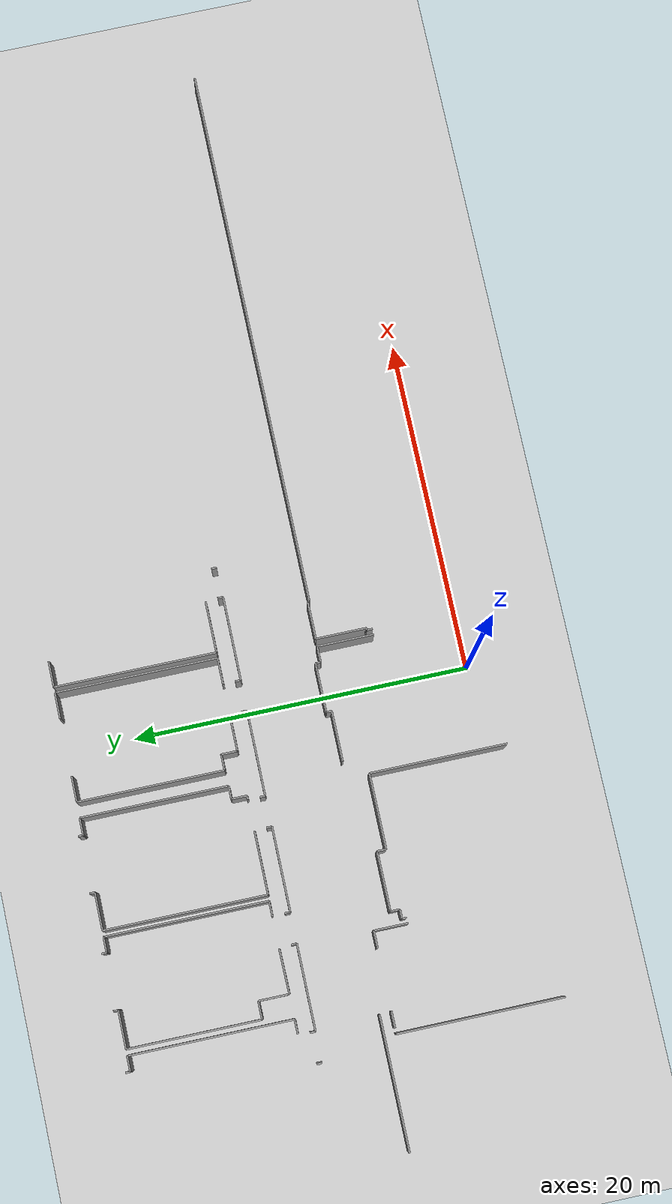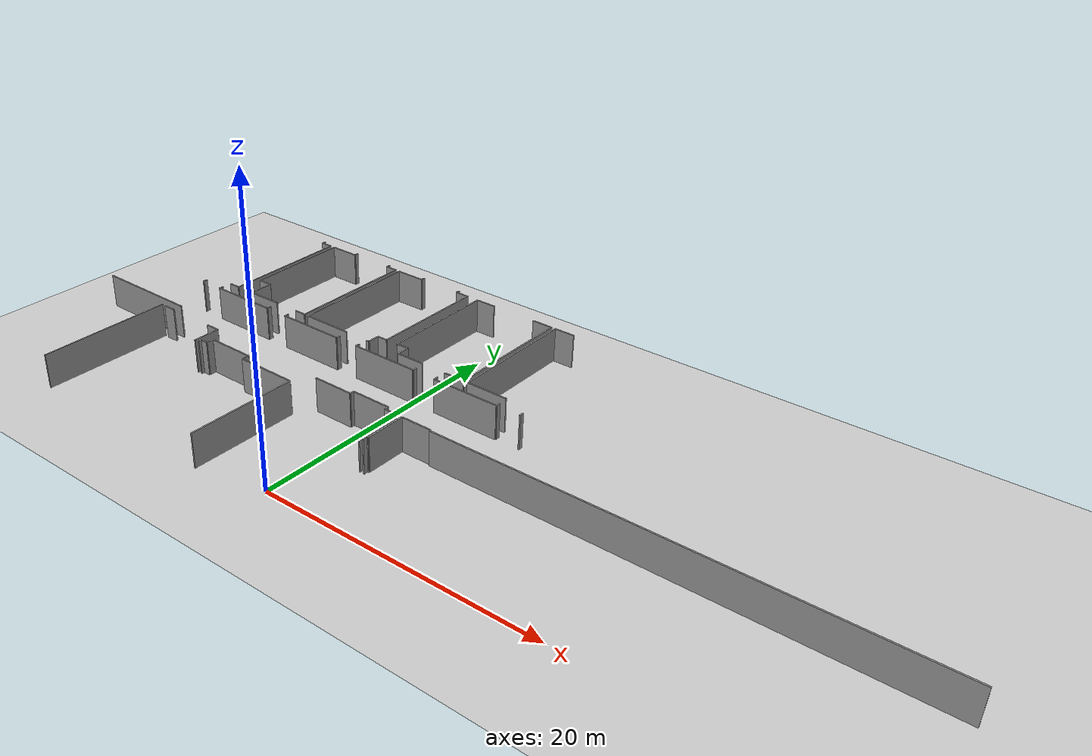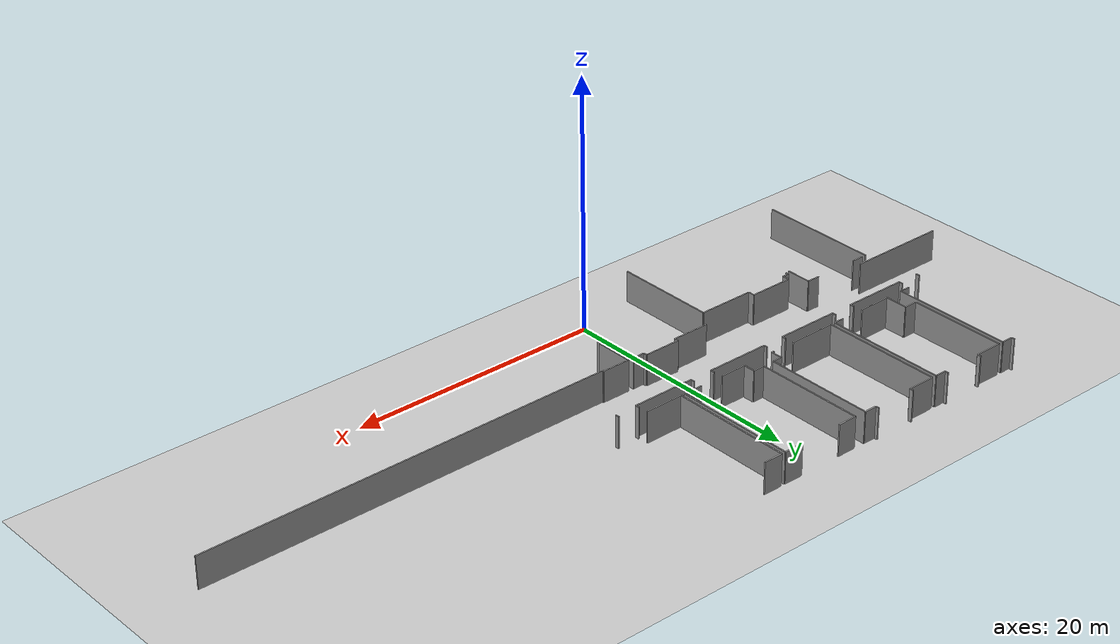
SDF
<sdf version="1.6">
 <world name="default">
  <model name="ground_plane">
   <static>1</static>
   <link name="link">
    <collision name="collision">
     <geometry><plane><normal>0 0 1</normal><size>100 100</size></plane></geometry>
     <surface><friction><ode><mu>100</mu><mu2>50</mu2></ode></friction></surface>
    </collision>
    <visual name="visual">
     <cast_shadows>0</cast_shadows>
     <geometry><plane><normal>0 0 1</normal><size>100 100</size></plane></geometry>
     <material>
      <script><uri>file://media/materials/scripts/gazebo.material</uri><name>Gazebo/Grey</name></script>
     </material>
    </visual>
   </link>
  </model>
  <model name="0510032196_A_40_1_104">
   <static>1</static>
   <link name="Wall_47">
    <collision name="Wall_47_Collision">
     <geometry><box><size>0.295231559148 0.1 2.5</size></box></geometry>
     <pose>0.147615779574 0 1.25 0 0 0</pose>
    </collision>
    <visual name="Wall_47_Visual">
     <pose>0.147615779574 0 1.25 0 0 0</pose>
     <geometry><box><size>0.295231559148 0.1 2.5</size></box></geometry>
     <material>
      <script><uri>file://media/materials/scripts/gazebo.material</uri><name>Gazebo/Grey</name></script>
      <ambient>1 1 1 1</ambient>
     </material>
    </visual>
    <pose>46.7275430837 -0.0 0 0 0 -1.57079632679</pose>
   </link>
   <link name="Wall_48">
    <collision name="Wall_48_Collision">
     <geometry><box><size>0.905266636165 0.1 2.5</size></box></geometry>
     <pose>0.452633318082 0 1.25 0 0 0</pose>
    </collision>
    <visual name="Wall_48_Visual">
     <pose>0.452633318082 0 1.25 0 0 0</pose>
     <geometry><box><size>0.905266636165 0.1 2.5</size></box></geometry>
     <material>
      <script><uri>file://media/materials/scripts/gazebo.material</uri><name>Gazebo/Grey</name></script>
      <ambient>1 1 1 1</ambient>
     </material>
    </visual>
    <pose>46.7275430837 -0.295231559148 0 0 0 0.0</pose>
   </link>
   <link name="Wall_49">
    <collision name="Wall_49_Collision">
     <geometry><box><size>9.684179757 0.1 2.5</size></box></geometry>
     <pose>4.8420898785 0 1.25 0 0 0</pose>
    </collision>
    <visual name="Wall_49_Visual">
     <pose>4.8420898785 0 1.25 0 0 0</pose>
     <geometry><box><size>9.684179757 0.1 2.5</size></box></geometry>
     <material>
      <script><uri>file://media/materials/scripts/gazebo.material</uri><name>Gazebo/Grey</name></script>
      <ambient>1 1 1 1</ambient>
     </material>
    </visual>
    <pose>47.6328097199 -0.295231559148 0 0 0 -1.57079632679</pose>
   </link>
   <link name="Wall_50">
    <collision name="Wall_50_Collision">
     <geometry><box><size>0.850998932439 0.1 2.5</size></box></geometry>
     <pose>0.425499466219 0 1.25 0 0 0</pose>
    </collision>
    <visual name="Wall_50_Visual">
     <pose>0.425499466219 0 1.25 0 0 0</pose>
     <geometry><box><size>0.850998932439 0.1 2.5</size></box></geometry>
     <material>
      <script><uri>file://media/materials/scripts/gazebo.material</uri><name>Gazebo/Grey</name></script>
      <ambient>1 1 1 1</ambient>
     </material>
    </visual>
    <pose>47.6328097199 -9.97941131615 0 0 0 3.14159265359</pose>
   </link>
   <link name="Wall_53">
    <collision name="Wall_53_Collision">
     <geometry><box><size>1.80544964669 0.1 2.5</size></box></geometry>
     <pose>0.902724823344 0 1.25 0 0 0</pose>
    </collision>
    <visual name="Wall_53_Visual">
     <pose>0.902724823344 0 1.25 0 0 0</pose>
     <geometry><box><size>1.80544964669 0.1 2.5</size></box></geometry>
     <material>
      <script><uri>file://media/materials/scripts/gazebo.material</uri><name>Gazebo/Grey</name></script>
      <ambient>1 1 1 1</ambient>
     </material>
    </visual>
    <pose>49.072365411 -9.98030095064 0 0 0 1.57079632679</pose>
   </link>
   <link name="Wall_54">
    <collision name="Wall_54_Collision">
     <geometry><box><size>1.06845101927 0.1 2.5</size></box></geometry>
     <pose>0.534225509633 0 1.25 0 0 0</pose>
    </collision>
    <visual name="Wall_54_Visual">
     <pose>0.534225509633 0 1.25 0 0 0</pose>
     <geometry><box><size>1.06845101927 0.1 2.5</size></box></geometry>
     <material>
      <script><uri>file://media/materials/scripts/gazebo.material</uri><name>Gazebo/Grey</name></script>
      <ambient>1 1 1 1</ambient>
     </material>
    </visual>
    <pose>49.072365411 -8.17485130395 0 0 0 3.14159265359</pose>
   </link>
   <link name="Wall_55">
    <collision name="Wall_55_Collision">
     <geometry><box><size>7.86957958416 0.1 2.5</size></box></geometry>
     <pose>3.93478979208 0 1.25 0 0 0</pose>
    </collision>
    <visual name="Wall_55_Visual">
     <pose>3.93478979208 0 1.25 0 0 0</pose>
     <geometry><box><size>7.86957958416 0.1 2.5</size></box></geometry>
     <material>
      <script><uri>file://media/materials/scripts/gazebo.material</uri><name>Gazebo/Grey</name></script>
      <ambient>1 1 1 1</ambient>
     </material>
    </visual>
    <pose>48.0039143917 -8.17485130395 0 0 0 1.57079632679</pose>
   </link>
   <link name="Wall_56">
    <collision name="Wall_56_Collision">
     <geometry><box><size>2.23806618881 0.1 2.5</size></box></geometry>
     <pose>1.1190330944 0 1.25 0 0 0</pose>
    </collision>
    <visual name="Wall_56_Visual">
     <pose>1.1190330944 0 1.25 0 0 0</pose>
     <geometry><box><size>2.23806618881 0.1 2.5</size></box></geometry>
     <material>
      <script><uri>file://media/materials/scripts/gazebo.material</uri><name>Gazebo/Grey</name></script>
      <ambient>1 1 1 1</ambient>
     </material>
    </visual>
    <pose>48.0039143917 -0.305271719791 0 0 0 0.0</pose>
   </link>
   <link name="Wall_57">
    <collision name="Wall_57_Collision">
     <geometry><box><size>0.29065629607 0.1 2.5</size></box></geometry>
     <pose>0.145328148035 0 1.25 0 0 0</pose>
    </collision>
    <visual name="Wall_57_Visual">
     <pose>0.145328148035 0 1.25 0 0 0</pose>
     <geometry><box><size>0.29065629607 0.1 2.5</size></box></geometry>
     <material>
      <script><uri>file://media/materials/scripts/gazebo.material</uri><name>Gazebo/Grey</name></script>
      <ambient>1 1 1 1</ambient>
     </material>
    </visual>
    <pose>50.2419805806 -0.305271719791 0 0 0 1.57079632679</pose>
   </link>
   <link name="Wall_58">
    <collision name="Wall_58_Collision">
     <geometry><box><size>0.28328503889 0.1 2.5</size></box></geometry>
     <pose>0.141642519445 0 1.25 0 0 0</pose>
    </collision>
    <visual name="Wall_58_Visual">
     <pose>0.141642519445 0 1.25 0 0 0</pose>
     <geometry><box><size>0.28328503889 0.1 2.5</size></box></geometry>
     <material>
      <script><uri>file://media/materials/scripts/gazebo.material</uri><name>Gazebo/Grey</name></script>
      <ambient>1 1 1 1</ambient>
     </material>
    </visual>
    <pose>53.5482436073 -0.0146154237202 0 0 0 -1.57079632679</pose>
   </link>
   <link name="Wall_59">
    <collision name="Wall_59_Collision">
     <geometry><box><size>0.909333536678 0.1 2.5</size></box></geometry>
     <pose>0.454666768339 0 1.25 0 0 0</pose>
    </collision>
    <visual name="Wall_59_Visual">
     <pose>0.454666768339 0 1.25 0 0 0</pose>
     <geometry><box><size>0.909333536678 0.1 2.5</size></box></geometry>
     <material>
      <script><uri>file://media/materials/scripts/gazebo.material</uri><name>Gazebo/Grey</name></script>
      <ambient>1 1 1 1</ambient>
     </material>
    </visual>
    <pose>53.5482436073 -0.29790046261 0 0 0 0.0</pose>
   </link>
   <link name="Wall_60">
    <collision name="Wall_60_Collision">
     <geometry><box><size>9.65253418738 0.1 2.5</size></box></geometry>
     <pose>4.82626709369 0 1.25 0 0 0</pose>
    </collision>
    <visual name="Wall_60_Visual">
     <pose>4.82626709369 0 1.25 0 0 0</pose>
     <geometry><box><size>9.65253418738 0.1 2.5</size></box></geometry>
     <material>
      <script><uri>file://media/materials/scripts/gazebo.material</uri><name>Gazebo/Grey</name></script>
      <ambient>1 1 1 1</ambient>
     </material>
    </visual>
    <pose>54.457577144 -0.29790046261 0 0 0 -1.57079632679</pose>
   </link>
   <link name="Wall_61">
    <collision name="Wall_61_Collision">
     <geometry><box><size>0.87908596411 0.1 2.5</size></box></geometry>
     <pose>0.439542982055 0 1.25 0 0 0</pose>
    </collision>
    <visual name="Wall_61_Visual">
     <pose>0.439542982055 0 1.25 0 0 0</pose>
     <geometry><box><size>0.87908596411 0.1 2.5</size></box></geometry>
     <material>
      <script><uri>file://media/materials/scripts/gazebo.material</uri><name>Gazebo/Grey</name></script>
      <ambient>1 1 1 1</ambient>
     </material>
    </visual>
    <pose>54.457577144 -9.95043464999 0 0 0 3.14159265359</pose>
   </link>
   <link name="Wall_62">
    <collision name="Wall_62_Collision">
     <geometry><box><size>2.61582298896 0.1 2.5</size></box></geometry>
     <pose>1.30791149448 0 1.25 0 0 0</pose>
    </collision>
    <visual name="Wall_62_Visual">
     <pose>1.30791149448 0 1.25 0 0 0</pose>
     <geometry><box><size>2.61582298896 0.1 2.5</size></box></geometry>
     <material>
      <script><uri>file://media/materials/scripts/gazebo.material</uri><name>Gazebo/Grey</name></script>
      <ambient>1 1 1 1</ambient>
     </material>
    </visual>
    <pose>51.6880178944 -9.95043464999 0 0 0 -3.13017485135</pose>
   </link>
   <link name="Wall_63">
    <collision name="Wall_63_Collision">
     <geometry><box><size>9.64834019623 0.1 2.5</size></box></geometry>
     <pose>4.82417009811 0 1.25 0 0 0</pose>
    </collision>
    <visual name="Wall_63_Visual">
     <pose>4.82417009811 0 1.25 0 0 0</pose>
     <geometry><box><size>9.64834019623 0.1 2.5</size></box></geometry>
     <material>
      <script><uri>file://media/materials/scripts/gazebo.material</uri><name>Gazebo/Grey</name></script>
      <ambient>1 1 1 1</ambient>
     </material>
    </visual>
    <pose>54.814828936 -9.96644807076 0 0 0 1.57079632679</pose>
   </link>
   <link name="Wall_64">
    <collision name="Wall_64_Collision">
     <geometry><box><size>2.2197651365 0.1 2.5</size></box></geometry>
     <pose>1.10988256825 0 1.25 0 0 0</pose>
    </collision>
    <visual name="Wall_64_Visual">
     <pose>1.10988256825 0 1.25 0 0 0</pose>
     <geometry><box><size>2.2197651365 0.1 2.5</size></box></geometry>
     <material>
      <script><uri>file://media/materials/scripts/gazebo.material</uri><name>Gazebo/Grey</name></script>
      <ambient>1 1 1 1</ambient>
     </material>
    </visual>
    <pose>54.814828936 -0.318107874536 0 0 0 0.0</pose>
   </link>
   <link name="Wall_65">
    <collision name="Wall_65_Collision">
     <geometry><box><size>0.307432260688 0.1 2.5</size></box></geometry>
     <pose>0.153716130344 0 1.25 0 0 0</pose>
    </collision>
    <visual name="Wall_65_Visual">
     <pose>0.153716130344 0 1.25 0 0 0</pose>
     <geometry><box><size>0.307432260688 0.1 2.5</size></box></geometry>
     <material>
      <script><uri>file://media/materials/scripts/gazebo.material</uri><name>Gazebo/Grey</name></script>
      <ambient>1 1 1 1</ambient>
     </material>
    </visual>
    <pose>57.0345940725 -0.318107874536 0 0 0 1.57079632679</pose>
   </link>
   <link name="Wall_66">
    <collision name="Wall_66_Collision">
     <geometry><box><size>0.287224848762 0.1 2.5</size></box></geometry>
     <pose>0.143612424381 0 1.25 0 0 0</pose>
    </collision>
    <visual name="Wall_66_Visual">
     <pose>0.143612424381 0 1.25 0 0 0</pose>
     <geometry><box><size>0.287224848762 0.1 2.5</size></box></geometry>
     <material>
      <script><uri>file://media/materials/scripts/gazebo.material</uri><name>Gazebo/Grey</name></script>
      <ambient>1 1 1 1</ambient>
     </material>
    </visual>
    <pose>60.3714859438 -0.0106756138478 0 0 0 -1.57079632679</pose>
   </link>
   <link name="Wall_67">
    <collision name="Wall_67_Collision">
     <geometry><box><size>1.01723349093 0.1 2.5</size></box></geometry>
     <pose>0.508616745463 0 1.25 0 0 0</pose>
    </collision>
    <visual name="Wall_67_Visual">
     <pose>0.508616745463 0 1.25 0 0 0</pose>
     <geometry><box><size>1.01723349093 0.1 2.5</size></box></geometry>
     <material>
      <script><uri>file://media/materials/scripts/gazebo.material</uri><name>Gazebo/Grey</name></script>
      <ambient>1 1 1 1</ambient>
     </material>
    </visual>
    <pose>60.3714859438 -0.29790046261 0 0 0 0.0</pose>
   </link>
   <link name="Wall_68">
    <collision name="Wall_68_Collision">
     <geometry><box><size>8.74561537288 0.1 2.5</size></box></geometry>
     <pose>4.37280768644 0 1.25 0 0 0</pose>
    </collision>
    <visual name="Wall_68_Visual">
     <pose>4.37280768644 0 1.25 0 0 0</pose>
     <geometry><box><size>8.74561537288 0.1 2.5</size></box></geometry>
     <material>
      <script><uri>file://media/materials/scripts/gazebo.material</uri><name>Gazebo/Grey</name></script>
      <ambient>1 1 1 1</ambient>
     </material>
    </visual>
    <pose>61.3887194347 -0.29790046261 0 0 0 -1.57079632679</pose>
   </link>
   <link name="Wall_69">
    <collision name="Wall_69_Collision">
     <geometry><box><size>0.777159269991 0.1 2.5</size></box></geometry>
     <pose>0.388579634996 0 1.25 0 0 0</pose>
    </collision>
    <visual name="Wall_69_Visual">
     <pose>0.388579634996 0 1.25 0 0 0</pose>
     <geometry><box><size>0.777159269991 0.1 2.5</size></box></geometry>
     <material>
      <script><uri>file://media/materials/scripts/gazebo.material</uri><name>Gazebo/Grey</name></script>
      <ambient>1 1 1 1</ambient>
     </material>
    </visual>
    <pose>61.3887194347 -9.04351583549 0 0 0 3.14159265359</pose>
   </link>
   <link name="Wall_70">
    <collision name="Wall_70_Collision">
     <geometry><box><size>0.91924660668 0.1 2.5</size></box></geometry>
     <pose>0.45962330334 0 1.25 0 0 0</pose>
    </collision>
    <visual name="Wall_70_Visual">
     <pose>0.45962330334 0 1.25 0 0 0</pose>
     <geometry><box><size>0.91924660668 0.1 2.5</size></box></geometry>
     <material>
      <script><uri>file://media/materials/scripts/gazebo.material</uri><name>Gazebo/Grey</name></script>
      <ambient>1 1 1 1</ambient>
     </material>
    </visual>
    <pose>60.6115601647 -9.04351583549 0 0 0 -1.57079632679</pose>
   </link>
   <link name="Wall_71">
    <collision name="Wall_71_Collision">
     <geometry><box><size>0.208809923237 0.1 2.5</size></box></geometry>
     <pose>0.104404961619 0 1.25 0 0 0</pose>
    </collision>
    <visual name="Wall_71_Visual">
     <pose>0.104404961619 0 1.25 0 0 0</pose>
     <geometry><box><size>0.208809923237 0.1 2.5</size></box></geometry>
     <material>
      <script><uri>file://media/materials/scripts/gazebo.material</uri><name>Gazebo/Grey</name></script>
      <ambient>1 1 1 1</ambient>
     </material>
    </visual>
    <pose>60.6115601647 -9.96276244217 0 0 0 3.14159265359</pose>
   </link>
   <link name="Wall_72">
    <collision name="Wall_72_Collision">
     <geometry><box><size>3.73303521883 0.1 2.5</size></box></geometry>
     <pose>1.86651760942 0 1.25 0 0 0</pose>
    </collision>
    <visual name="Wall_72_Visual">
     <pose>1.86651760942 0 1.25 0 0 0</pose>
     <geometry><box><size>3.73303521883 0.1 2.5</size></box></geometry>
     <material>
      <script><uri>file://media/materials/scripts/gazebo.material</uri><name>Gazebo/Grey</name></script>
      <ambient>1 1 1 1</ambient>
     </material>
    </visual>
    <pose>58.5478623354 -9.96276244217 0 0 0 -3.14060535265</pose>
   </link>
   <link name="Wall_73">
    <collision name="Wall_73_Collision">
     <geometry><box><size>0.952671445275 0.1 2.5</size></box></geometry>
     <pose>0.476335722637 0 1.25 0 0 0</pose>
    </collision>
    <visual name="Wall_73_Visual">
     <pose>0.476335722637 0 1.25 0 0 0</pose>
     <geometry><box><size>0.952671445275 0.1 2.5</size></box></geometry>
     <material>
      <script><uri>file://media/materials/scripts/gazebo.material</uri><name>Gazebo/Grey</name></script>
      <ambient>1 1 1 1</ambient>
     </material>
    </visual>
    <pose>63.2522495043 -9.95437445986 0 0 0 1.57079632679</pose>
   </link>
   <link name="Wall_74">
    <collision name="Wall_74_Collision">
     <geometry><box><size>0.935895480657 0.1 2.5</size></box></geometry>
     <pose>0.467947740328 0 1.25 0 0 0</pose>
    </collision>
    <visual name="Wall_74_Visual">
     <pose>0.467947740328 0 1.25 0 0 0</pose>
     <geometry><box><size>0.935895480657 0.1 2.5</size></box></geometry>
     <material>
      <script><uri>file://media/materials/scripts/gazebo.material</uri><name>Gazebo/Grey</name></script>
      <ambient>1 1 1 1</ambient>
     </material>
    </visual>
    <pose>63.2522495043 -9.00170301459 0 0 0 3.14159265359</pose>
   </link>
   <link name="Wall_75">
    <collision name="Wall_75_Collision">
     <geometry><box><size>8.68359514005 0.1 2.5</size></box></geometry>
     <pose>4.34179757003 0 1.25 0 0 0</pose>
    </collision>
    <visual name="Wall_75_Visual">
     <pose>4.34179757003 0 1.25 0 0 0</pose>
     <geometry><box><size>8.68359514005 0.1 2.5</size></box></geometry>
     <material>
      <script><uri>file://media/materials/scripts/gazebo.material</uri><name>Gazebo/Grey</name></script>
      <ambient>1 1 1 1</ambient>
     </material>
    </visual>
    <pose>62.3163540237 -9.00170301459 0 0 0 1.57079632679</pose>
   </link>
   <link name="Wall_76">
    <collision name="Wall_76_Collision">
     <geometry><box><size>1.52203751716 0.1 2.5</size></box></geometry>
     <pose>0.761018758579 0 1.25 0 0 0</pose>
    </collision>
    <visual name="Wall_76_Visual">
     <pose>0.761018758579 0 1.25 0 0 0</pose>
     <geometry><box><size>1.52203751716 0.1 2.5</size></box></geometry>
     <material>
      <script><uri>file://media/materials/scripts/gazebo.material</uri><name>Gazebo/Grey</name></script>
      <ambient>1 1 1 1</ambient>
     </material>
    </visual>
    <pose>62.3163540237 -0.318107874536 0 0 0 0.0</pose>
   </link>
   <link name="Wall_77">
    <collision name="Wall_77_Collision">
     <geometry><box><size>1.54720146408 0.1 2.5</size></box></geometry>
     <pose>0.773600732042 0 1.25 0 0 0</pose>
    </collision>
    <visual name="Wall_77_Visual">
     <pose>0.773600732042 0 1.25 0 0 0</pose>
     <geometry><box><size>1.54720146408 0.1 2.5</size></box></geometry>
     <material>
      <script><uri>file://media/materials/scripts/gazebo.material</uri><name>Gazebo/Grey</name></script>
      <ambient>1 1 1 1</ambient>
     </material>
    </visual>
    <pose>67.2595445071 -0.318107874536 0 0 0 0.0</pose>
   </link>
   <link name="Wall_78">
    <collision name="Wall_78_Collision">
     <geometry><box><size>9.62787860302 0.1 2.5</size></box></geometry>
     <pose>4.81393930151 0 1.25 0 0 0</pose>
    </collision>
    <visual name="Wall_78_Visual">
     <pose>4.81393930151 0 1.25 0 0 0</pose>
     <geometry><box><size>9.62787860302 0.1 2.5</size></box></geometry>
     <material>
      <script><uri>file://media/materials/scripts/gazebo.material</uri><name>Gazebo/Grey</name></script>
      <ambient>1 1 1 1</ambient>
     </material>
    </visual>
    <pose>68.8067459712 -0.318107874536 0 0 0 -1.57079632679</pose>
   </link>
   <link name="Wall_79">
    <collision name="Wall_79_Collision">
     <geometry><box><size>1.56016470947 0.1 2.5</size></box></geometry>
     <pose>0.780082354735 0 1.25 0 0 0</pose>
    </collision>
    <visual name="Wall_79_Visual">
     <pose>0.780082354735 0 1.25 0 0 0</pose>
     <geometry><box><size>1.56016470947 0.1 2.5</size></box></geometry>
     <material>
      <script><uri>file://media/materials/scripts/gazebo.material</uri><name>Gazebo/Grey</name></script>
      <ambient>1 1 1 1</ambient>
     </material>
    </visual>
    <pose>68.8067459712 -9.94598647756 0 0 0 3.14159265359</pose>
   </link>
   <link name="Wall_80">
    <collision name="Wall_80_Collision">
     <geometry><box><size>2.10578153751 0.1 2.5</size></box></geometry>
     <pose>1.05289076876 0 1.25 0 0 0</pose>
    </collision>
    <visual name="Wall_80_Visual">
     <pose>1.05289076876 0 1.25 0 0 0</pose>
     <geometry><box><size>2.10578153751 0.1 2.5</size></box></geometry>
     <material>
      <script><uri>file://media/materials/scripts/gazebo.material</uri><name>Gazebo/Grey</name></script>
      <ambient>1 1 1 1</ambient>
     </material>
    </visual>
    <pose>65.3580143358 -9.94598647756 0 0 0 -3.13760933227</pose>
   </link>
   <link name="Wall_81">
    <collision name="Wall_81_Collision">
     <geometry><box><size>9.63715621982 0.1 2.5</size></box></geometry>
     <pose>4.81857810991 0 1.25 0 0 0</pose>
    </collision>
    <visual name="Wall_81_Visual">
     <pose>4.81857810991 0 1.25 0 0 0</pose>
     <geometry><box><size>9.63715621982 0.1 2.5</size></box></geometry>
     <material>
      <script><uri>file://media/materials/scripts/gazebo.material</uri><name>Gazebo/Grey</name></script>
      <ambient>1 1 1 1</ambient>
     </material>
    </visual>
    <pose>69.1334960094 -9.95691627269 0 0 0 1.57079632679</pose>
   </link>
   <link name="Wall_82">
    <collision name="Wall_82_Collision">
     <geometry><box><size>1.53449239998 0.1 2.5</size></box></geometry>
     <pose>0.76724619999 0 1.25 0 0 0</pose>
    </collision>
    <visual name="Wall_82_Visual">
     <pose>0.76724619999 0 1.25 0 0 0</pose>
     <geometry><box><size>1.53449239998 0.1 2.5</size></box></geometry>
     <material>
      <script><uri>file://media/materials/scripts/gazebo.material</uri><name>Gazebo/Grey</name></script>
      <ambient>1 1 1 1</ambient>
     </material>
    </visual>
    <pose>69.1334960094 -0.31976005287 0 0 0 0.0</pose>
   </link>
   <link name="Wall_87">
    <collision name="Wall_87_Collision">
     <geometry><box><size>3.06773715498 0.1 2.5</size></box></geometry>
     <pose>1.53386857749 0 1.25 0 0 0</pose>
    </collision>
    <visual name="Wall_87_Visual">
     <pose>1.53386857749 0 1.25 0 0 0</pose>
     <geometry><box><size>3.06773715498 0.1 2.5</size></box></geometry>
     <material>
      <script><uri>file://media/materials/scripts/gazebo.material</uri><name>Gazebo/Grey</name></script>
      <ambient>1 1 1 1</ambient>
     </material>
    </visual>
    <pose>72.2012099029 -9.94496975243 0 0 0 -3.13769839869</pose>
   </link>
   <link name="Wall_186">
    <collision name="Wall_186_Collision">
     <geometry><box><size>0.353566163388 0.1 2.5</size></box></geometry>
     <pose>0.176783081694 0 1.25 0 0 0</pose>
    </collision>
    <visual name="Wall_186_Visual">
     <pose>0.176783081694 0 1.25 0 0 0</pose>
     <geometry><box><size>0.353566163388 0.1 2.5</size></box></geometry>
     <material>
      <script><uri>file://media/materials/scripts/gazebo.material</uri><name>Gazebo/Grey</name></script>
      <ambient>1 1 1 1</ambient>
     </material>
    </visual>
    <pose>68.5819226272 -19.1245996645 0 0 0 1.57079632679</pose>
   </link>
   <link name="Wall_187">
    <collision name="Wall_187_Collision">
     <geometry><box><size>0.118829749377 0.1 2.5</size></box></geometry>
     <pose>0.0594148746886 0 1.25 0 0 0</pose>
    </collision>
    <visual name="Wall_187_Visual">
     <pose>0.0594148746886 0 1.25 0 0 0</pose>
     <geometry><box><size>0.118829749377 0.1 2.5</size></box></geometry>
     <material>
      <script><uri>file://media/materials/scripts/gazebo.material</uri><name>Gazebo/Grey</name></script>
      <ambient>1 1 1 1</ambient>
     </material>
    </visual>
    <pose>68.5819226272 -18.7710335011 0 0 0 0.0</pose>
   </link>
   <link name="Wall_188">
    <collision name="Wall_188_Collision">
     <geometry><box><size>3.00277057597 0.1 2.5</size></box></geometry>
     <pose>1.50138528799 0 1.25 0 0 0</pose>
    </collision>
    <visual name="Wall_188_Visual">
     <pose>1.50138528799 0 1.25 0 0 0</pose>
     <geometry><box><size>3.00277057597 0.1 2.5</size></box></geometry>
     <material>
      <script><uri>file://media/materials/scripts/gazebo.material</uri><name>Gazebo/Grey</name></script>
      <ambient>1 1 1 1</ambient>
     </material>
    </visual>
    <pose>68.7007523766 -18.7710335011 0 0 0 1.57079632679</pose>
   </link>
   <link name="Wall_189">
    <collision name="Wall_189_Collision">
     <geometry><box><size>2.26513649535 0.1 2.5</size></box></geometry>
     <pose>1.13256824767 0 1.25 0 0 0</pose>
    </collision>
    <visual name="Wall_189_Visual">
     <pose>1.13256824767 0 1.25 0 0 0</pose>
     <geometry><box><size>2.26513649535 0.1 2.5</size></box></geometry>
     <material>
      <script><uri>file://media/materials/scripts/gazebo.material</uri><name>Gazebo/Grey</name></script>
      <ambient>1 1 1 1</ambient>
     </material>
    </visual>
    <pose>68.7007523766 -15.7682629251 0 0 0 0.0</pose>
   </link>
   <link name="Wall_190">
    <collision name="Wall_190_Collision">
     <geometry><box><size>0.101672512836 0.1 2.5</size></box></geometry>
     <pose>0.0508362564181 0 1.25 0 0 0</pose>
    </collision>
    <visual name="Wall_190_Visual">
     <pose>0.0508362564181 0 1.25 0 0 0</pose>
     <geometry><box><size>0.101672512836 0.1 2.5</size></box></geometry>
     <material>
      <script><uri>file://media/materials/scripts/gazebo.material</uri><name>Gazebo/Grey</name></script>
      <ambient>1 1 1 1</ambient>
     </material>
    </visual>
    <pose>70.9658888719 -15.7682629251 0 0 0 -1.57079632679</pose>
   </link>
   <link name="Wall_191">
    <collision name="Wall_191_Collision">
     <geometry><box><size>32.8483554471 0.1 2.5</size></box></geometry>
     <pose>16.4241777236 0 1.25 0 0 0</pose>
    </collision>
    <visual name="Wall_191_Visual">
     <pose>16.4241777236 0 1.25 0 0 0</pose>
     <geometry><box><size>32.8483554471 0.1 2.5</size></box></geometry>
     <material>
      <script><uri>file://media/materials/scripts/gazebo.material</uri><name>Gazebo/Grey</name></script>
      <ambient>1 1 1 1</ambient>
     </material>
    </visual>
    <pose>70.9658888719 -15.869935438 0 0 0 0.0</pose>
   </link>
   <link name="Wall_204">
    <collision name="Wall_204_Collision">
     <geometry><box><size>0.268923796452 0.1 2.5</size></box></geometry>
     <pose>0.134461898226 0 1.25 0 0 0</pose>
    </collision>
    <visual name="Wall_204_Visual">
     <pose>0.134461898226 0 1.25 0 0 0</pose>
     <geometry><box><size>0.268923796452 0.1 2.5</size></box></geometry>
     <material>
      <script><uri>file://media/materials/scripts/gazebo.material</uri><name>Gazebo/Grey</name></script>
      <ambient>1 1 1 1</ambient>
     </material>
    </visual>
    <pose>51.8707742362 -17.4250165218 0 0 0 1.57079632679</pose>
   </link>
   <link name="Wall_205">
    <collision name="Wall_205_Collision">
     <geometry><box><size>0.543947943673 0.1 2.5</size></box></geometry>
     <pose>0.271973971837 0 1.25 0 0 0</pose>
    </collision>
    <visual name="Wall_205_Visual">
     <pose>0.271973971837 0 1.25 0 0 0</pose>
     <geometry><box><size>0.543947943673 0.1 2.5</size></box></geometry>
     <material>
      <script><uri>file://media/materials/scripts/gazebo.material</uri><name>Gazebo/Grey</name></script>
      <ambient>1 1 1 1</ambient>
     </material>
    </visual>
    <pose>51.8707742362 -17.1560927253 0 0 0 0.0</pose>
   </link>
   <link name="Wall_206">
    <collision name="Wall_206_Collision">
     <geometry><box><size>0.559453001881 0.1 2.5</size></box></geometry>
     <pose>0.27972650094 0 1.25 0 0 0</pose>
    </collision>
    <visual name="Wall_206_Visual">
     <pose>0.27972650094 0 1.25 0 0 0</pose>
     <geometry><box><size>0.559453001881 0.1 2.5</size></box></geometry>
     <material>
      <script><uri>file://media/materials/scripts/gazebo.material</uri><name>Gazebo/Grey</name></script>
      <ambient>1 1 1 1</ambient>
     </material>
    </visual>
    <pose>52.4147221799 -17.1560927253 0 0 0 1.57079632679</pose>
   </link>
   <link name="Wall_207">
    <collision name="Wall_207_Collision">
     <geometry><box><size>3.50541406131 0.1 2.5</size></box></geometry>
     <pose>1.75270703065 0 1.25 0 0 0</pose>
    </collision>
    <visual name="Wall_207_Visual">
     <pose>1.75270703065 0 1.25 0 0 0</pose>
     <geometry><box><size>3.50541406131 0.1 2.5</size></box></geometry>
     <material>
      <script><uri>file://media/materials/scripts/gazebo.material</uri><name>Gazebo/Grey</name></script>
      <ambient>1 1 1 1</ambient>
     </material>
    </visual>
    <pose>52.4147221799 -16.5966397235 0 0 0 0.0</pose>
   </link>
   <link name="Wall_208">
    <collision name="Wall_208_Collision">
     <geometry><box><size>0.530857607646 0.1 2.5</size></box></geometry>
     <pose>0.265428803823 0 1.25 0 0 0</pose>
    </collision>
    <visual name="Wall_208_Visual">
     <pose>0.265428803823 0 1.25 0 0 0</pose>
     <geometry><box><size>0.530857607646 0.1 2.5</size></box></geometry>
     <material>
      <script><uri>file://media/materials/scripts/gazebo.material</uri><name>Gazebo/Grey</name></script>
      <ambient>1 1 1 1</ambient>
     </material>
    </visual>
    <pose>55.9201362412 -16.5966397235 0 0 0 -1.57079632679</pose>
   </link>
   <link name="Wall_209">
    <collision name="Wall_209_Collision">
     <geometry><box><size>4.46583803569 0.1 2.5</size></box></geometry>
     <pose>2.23291901784 0 1.25 0 0 0</pose>
    </collision>
    <visual name="Wall_209_Visual">
     <pose>2.23291901784 0 1.25 0 0 0</pose>
     <geometry><box><size>4.46583803569 0.1 2.5</size></box></geometry>
     <material>
      <script><uri>file://media/materials/scripts/gazebo.material</uri><name>Gazebo/Grey</name></script>
      <ambient>1 1 1 1</ambient>
     </material>
    </visual>
    <pose>55.9201362412 -17.1274973311 0 0 0 0.0</pose>
   </link>
   <link name="Wall_210">
    <collision name="Wall_210_Collision">
     <geometry><box><size>8.14422245946 0.1 2.5</size></box></geometry>
     <pose>4.07211122973 0 1.25 0 0 0</pose>
    </collision>
    <visual name="Wall_210_Visual">
     <pose>4.07211122973 0 1.25 0 0 0</pose>
     <geometry><box><size>8.14422245946 0.1 2.5</size></box></geometry>
     <material>
      <script><uri>file://media/materials/scripts/gazebo.material</uri><name>Gazebo/Grey</name></script>
      <ambient>1 1 1 1</ambient>
     </material>
    </visual>
    <pose>60.3859742769 -17.1274973311 0 0 0 -1.57079632679</pose>
   </link>
   <link name="Wall_213">
    <collision name="Wall_213_Collision">
     <geometry><box><size>0.970718316303 0.1 2.5</size></box></geometry>
     <pose>0.485359158152 0 1.25 0 0 0</pose>
    </collision>
    <visual name="Wall_213_Visual">
     <pose>0.485359158152 0 1.25 0 0 0</pose>
     <geometry><box><size>0.970718316303 0.1 2.5</size></box></geometry>
     <material>
      <script><uri>file://media/materials/scripts/gazebo.material</uri><name>Gazebo/Grey</name></script>
      <ambient>1 1 1 1</ambient>
     </material>
    </visual>
    <pose>45.9447918255 -15.4361750801 0 0 0 0.0</pose>
   </link>
   <link name="Wall_214">
    <collision name="Wall_214_Collision">
     <geometry><box><size>1.0388388999 0.1 2.5</size></box></geometry>
     <pose>0.519419449952 0 1.25 0 0 0</pose>
    </collision>
    <visual name="Wall_214_Visual">
     <pose>0.519419449952 0 1.25 0 0 0</pose>
     <geometry><box><size>1.0388388999 0.1 2.5</size></box></geometry>
     <material>
      <script><uri>file://media/materials/scripts/gazebo.material</uri><name>Gazebo/Grey</name></script>
      <ambient>1 1 1 1</ambient>
     </material>
    </visual>
    <pose>50.5129378273 -15.4361750801 0 0 0 0.0</pose>
   </link>
   <link name="Wall_215">
    <collision name="Wall_215_Collision">
     <geometry><box><size>2.02518936506 0.1 2.5</size></box></geometry>
     <pose>1.01259468253 0 1.25 0 0 0</pose>
    </collision>
    <visual name="Wall_215_Visual">
     <pose>1.01259468253 0 1.25 0 0 0</pose>
     <geometry><box><size>2.02518936506 0.1 2.5</size></box></geometry>
     <material>
      <script><uri>file://media/materials/scripts/gazebo.material</uri><name>Gazebo/Grey</name></script>
      <ambient>1 1 1 1</ambient>
     </material>
    </visual>
    <pose>51.5517767272 -15.4361750801 0 0 0 -1.57079632679</pose>
   </link>
   <link name="Wall_317">
    <collision name="Wall_317_Collision">
     <geometry><box><size>2.98434243302 0.1 2.5</size></box></geometry>
     <pose>1.49217121651 0 1.25 0 0 0</pose>
    </collision>
    <visual name="Wall_317_Visual">
     <pose>1.49217121651 0 1.25 0 0 0</pose>
     <geometry><box><size>2.98434243302 0.1 2.5</size></box></geometry>
     <material>
      <script><uri>file://media/materials/scripts/gazebo.material</uri><name>Gazebo/Grey</name></script>
      <ambient>1 1 1 1</ambient>
     </material>
    </visual>
    <pose>61.3922779727 -15.7708047379 0 0 0 0.0</pose>
   </link>
   <link name="Wall_318">
    <collision name="Wall_318_Collision">
     <geometry><box><size>0.322301865691 0.1 2.5</size></box></geometry>
     <pose>0.161150932845 0 1.25 0 0 0</pose>
    </collision>
    <visual name="Wall_318_Visual">
     <pose>0.161150932845 0 1.25 0 0 0</pose>
     <geometry><box><size>0.322301865691 0.1 2.5</size></box></geometry>
     <material>
      <script><uri>file://media/materials/scripts/gazebo.material</uri><name>Gazebo/Grey</name></script>
      <ambient>1 1 1 1</ambient>
     </material>
    </visual>
    <pose>64.3766204057 -15.7708047379 0 0 0 1.57079632679</pose>
   </link>
   <link name="Wall_319">
    <collision name="Wall_319_Collision">
     <geometry><box><size>2.92155965635 0.1 2.5</size></box></geometry>
     <pose>1.46077982817 0 1.25 0 0 0</pose>
    </collision>
    <visual name="Wall_319_Visual">
     <pose>1.46077982817 0 1.25 0 0 0</pose>
     <geometry><box><size>2.92155965635 0.1 2.5</size></box></geometry>
     <material>
      <script><uri>file://media/materials/scripts/gazebo.material</uri><name>Gazebo/Grey</name></script>
      <ambient>1 1 1 1</ambient>
     </material>
    </visual>
    <pose>64.3766204057 -15.4485028722 0 0 0 0.0</pose>
   </link>
   <link name="Wall_320">
    <collision name="Wall_320_Collision">
     <geometry><box><size>0.304127904021 0.1 2.5</size></box></geometry>
     <pose>0.152063952011 0 1.25 0 0 0</pose>
    </collision>
    <visual name="Wall_320_Visual">
     <pose>0.152063952011 0 1.25 0 0 0</pose>
     <geometry><box><size>0.304127904021 0.1 2.5</size></box></geometry>
     <material>
      <script><uri>file://media/materials/scripts/gazebo.material</uri><name>Gazebo/Grey</name></script>
      <ambient>1 1 1 1</ambient>
     </material>
    </visual>
    <pose>67.298180062 -15.4485028722 0 0 0 -1.57079632679</pose>
   </link>
   <link name="Wall_321">
    <collision name="Wall_321_Collision">
     <geometry><box><size>0.950510904377 0.1 2.5</size></box></geometry>
     <pose>0.475255452189 0 1.25 0 0 0</pose>
    </collision>
    <visual name="Wall_321_Visual">
     <pose>0.475255452189 0 1.25 0 0 0</pose>
     <geometry><box><size>0.950510904377 0.1 2.5</size></box></geometry>
     <material>
      <script><uri>file://media/materials/scripts/gazebo.material</uri><name>Gazebo/Grey</name></script>
      <ambient>1 1 1 1</ambient>
     </material>
    </visual>
    <pose>67.298180062 -15.7526307763 0 0 0 0.0</pose>
   </link>
   <link name="Wall_322">
    <collision name="Wall_322_Collision">
     <geometry><box><size>3.36713944385 0.1 2.5</size></box></geometry>
     <pose>1.68356972193 0 1.25 0 0 0</pose>
    </collision>
    <visual name="Wall_322_Visual">
     <pose>1.68356972193 0 1.25 0 0 0</pose>
     <geometry><box><size>3.36713944385 0.1 2.5</size></box></geometry>
     <material>
      <script><uri>file://media/materials/scripts/gazebo.material</uri><name>Gazebo/Grey</name></script>
      <ambient>1 1 1 1</ambient>
     </material>
    </visual>
    <pose>68.2486909664 -15.7526307763 0 0 0 -1.57079632679</pose>
   </link>
   <link name="Wall_334">
    <collision name="Wall_334_Collision">
     <geometry><box><size>9.84609323369 0.1 2.5</size></box></geometry>
     <pose>4.92304661685 0 1.25 0 0 0</pose>
    </collision>
    <visual name="Wall_334_Visual">
     <pose>4.92304661685 0 1.25 0 0 0</pose>
     <geometry><box><size>9.84609323369 0.1 2.5</size></box></geometry>
     <material>
      <script><uri>file://media/materials/scripts/gazebo.material</uri><name>Gazebo/Grey</name></script>
      <ambient>1 1 1 1</ambient>
     </material>
    </visual>
    <pose>45.6133394337 -15.4174927558 0 0 0 -1.57079632679</pose>
   </link>
   <link name="Wall_435">
    <collision name="Wall_435_Collision">
     <geometry><box><size>0.330689848 0.1 2.5</size></box></geometry>
     <pose>0.165344924 0 1.25 0 0 0</pose>
    </collision>
    <visual name="Wall_435_Visual">
     <pose>0.165344924 0 1.25 0 0 0</pose>
     <geometry><box><size>0.330689848 0.1 2.5</size></box></geometry>
     <material>
      <script><uri>file://media/materials/scripts/gazebo.material</uri><name>Gazebo/Grey</name></script>
      <ambient>1 1 1 1</ambient>
     </material>
    </visual>
    <pose>44.9229830715 -10.9905444563 0 0 0 1.57079632679</pose>
   </link>
   <link name="Wall_436">
    <collision name="Wall_436_Collision">
     <geometry><box><size>0.329418941589 0.1 2.5</size></box></geometry>
     <pose>0.164709470795 0 1.25 0 0 0</pose>
    </collision>
    <visual name="Wall_436_Visual">
     <pose>0.164709470795 0 1.25 0 0 0</pose>
     <geometry><box><size>0.329418941589 0.1 2.5</size></box></geometry>
     <material>
      <script><uri>file://media/materials/scripts/gazebo.material</uri><name>Gazebo/Grey</name></script>
      <ambient>1 1 1 1</ambient>
     </material>
    </visual>
    <pose>46.7149611103 -10.6598546083 0 0 0 -1.57079632679</pose>
   </link>
   <link name="Wall_437">
    <collision name="Wall_437_Collision">
     <geometry><box><size>5.05299679732 0.1 2.5</size></box></geometry>
     <pose>2.52649839866 0 1.25 0 0 0</pose>
    </collision>
    <visual name="Wall_437_Visual">
     <pose>2.52649839866 0 1.25 0 0 0</pose>
     <geometry><box><size>5.05299679732 0.1 2.5</size></box></geometry>
     <material>
      <script><uri>file://media/materials/scripts/gazebo.material</uri><name>Gazebo/Grey</name></script>
      <ambient>1 1 1 1</ambient>
     </material>
    </visual>
    <pose>46.7149611103 -10.9892735499 0 0 0 0.0</pose>
   </link>
   <link name="Wall_438">
    <collision name="Wall_438_Collision">
     <geometry><box><size>0.322047684409 0.1 2.5</size></box></geometry>
     <pose>0.161023842204 0 1.25 0 0 0</pose>
    </collision>
    <visual name="Wall_438_Visual">
     <pose>0.161023842204 0 1.25 0 0 0</pose>
     <geometry><box><size>0.322047684409 0.1 2.5</size></box></geometry>
     <material>
      <script><uri>file://media/materials/scripts/gazebo.material</uri><name>Gazebo/Grey</name></script>
      <ambient>1 1 1 1</ambient>
     </material>
    </visual>
    <pose>51.7679579076 -10.9892735499 0 0 0 1.57079632679</pose>
   </link>
   <link name="Wall_439">
    <collision name="Wall_439_Collision">
     <geometry><box><size>0.331706573128 0.1 2.5</size></box></geometry>
     <pose>0.165853286564 0 1.25 0 0 0</pose>
    </collision>
    <visual name="Wall_439_Visual">
     <pose>0.165853286564 0 1.25 0 0 0</pose>
     <geometry><box><size>0.331706573128 0.1 2.5</size></box></geometry>
     <material>
      <script><uri>file://media/materials/scripts/gazebo.material</uri><name>Gazebo/Grey</name></script>
      <ambient>1 1 1 1</ambient>
     </material>
    </visual>
    <pose>53.5838289868 -10.6672258655 0 0 0 -1.57079632679</pose>
   </link>
   <link name="Wall_440">
    <collision name="Wall_440_Collision">
     <geometry><box><size>4.99275583346 0.1 2.5</size></box></geometry>
     <pose>2.49637791673 0 1.25 0 0 0</pose>
    </collision>
    <visual name="Wall_440_Visual">
     <pose>2.49637791673 0 1.25 0 0 0</pose>
     <geometry><box><size>4.99275583346 0.1 2.5</size></box></geometry>
     <material>
      <script><uri>file://media/materials/scripts/gazebo.material</uri><name>Gazebo/Grey</name></script>
      <ambient>1 1 1 1</ambient>
     </material>
    </visual>
    <pose>53.5838289868 -10.9989324386 0 0 0 0.0</pose>
   </link>
   <link name="Wall_441">
    <collision name="Wall_441_Collision">
     <geometry><box><size>0.331071119923 0.1 2.5</size></box></geometry>
     <pose>0.165535559961 0 1.25 0 0 0</pose>
    </collision>
    <visual name="Wall_441_Visual">
     <pose>0.165535559961 0 1.25 0 0 0</pose>
     <geometry><box><size>0.331071119923 0.1 2.5</size></box></geometry>
     <material>
      <script><uri>file://media/materials/scripts/gazebo.material</uri><name>Gazebo/Grey</name></script>
      <ambient>1 1 1 1</ambient>
     </material>
    </visual>
    <pose>58.5765848203 -10.9989324386 0 0 0 1.57079632679</pose>
   </link>
   <link name="Wall_442">
    <collision name="Wall_442_Collision">
     <geometry><box><size>0.315566061715 0.1 2.5</size></box></geometry>
     <pose>0.157783030858 0 1.25 0 0 0</pose>
    </collision>
    <visual name="Wall_442_Visual">
     <pose>0.157783030858 0 1.25 0 0 0</pose>
     <geometry><box><size>0.315566061715 0.1 2.5</size></box></geometry>
     <material>
      <script><uri>file://media/materials/scripts/gazebo.material</uri><name>Gazebo/Grey</name></script>
      <ambient>1 1 1 1</ambient>
     </material>
    </visual>
    <pose>60.3730110315 -10.6678613187 0 0 0 -1.57079632679</pose>
   </link>
   <link name="Wall_443">
    <collision name="Wall_443_Collision">
     <geometry><box><size>5.05159880026 0.1 2.5</size></box></geometry>
     <pose>2.52579940013 0 1.25 0 0 0</pose>
    </collision>
    <visual name="Wall_443_Visual">
     <pose>2.52579940013 0 1.25 0 0 0</pose>
     <geometry><box><size>5.05159880026 0.1 2.5</size></box></geometry>
     <material>
      <script><uri>file://media/materials/scripts/gazebo.material</uri><name>Gazebo/Grey</name></script>
      <ambient>1 1 1 1</ambient>
     </material>
    </visual>
    <pose>60.3730110315 -10.9834273804 0 0 0 0.0</pose>
   </link>
   <link name="Wall_444">
    <collision name="Wall_444_Collision">
     <geometry><box><size>0.324208225306 0.1 2.5</size></box></geometry>
     <pose>0.162104112653 0 1.25 0 0 0</pose>
    </collision>
    <visual name="Wall_444_Visual">
     <pose>0.162104112653 0 1.25 0 0 0</pose>
     <geometry><box><size>0.324208225306 0.1 2.5</size></box></geometry>
     <material>
      <script><uri>file://media/materials/scripts/gazebo.material</uri><name>Gazebo/Grey</name></script>
      <ambient>1 1 1 1</ambient>
     </material>
    </visual>
    <pose>65.4246098317 -10.9834273804 0 0 0 1.57079632679</pose>
   </link>
   <link name="Wall_445">
    <collision name="Wall_445_Collision">
     <geometry><box><size>0.339077830309 0.1 2.5</size></box></geometry>
     <pose>0.169538915154 0 1.25 0 0 0</pose>
    </collision>
    <visual name="Wall_445_Visual">
     <pose>0.169538915154 0 1.25 0 0 0</pose>
     <geometry><box><size>0.339077830309 0.1 2.5</size></box></geometry>
     <material>
      <script><uri>file://media/materials/scripts/gazebo.material</uri><name>Gazebo/Grey</name></script>
      <ambient>1 1 1 1</ambient>
     </material>
    </visual>
    <pose>67.2463270805 -10.6592191551 0 0 0 -1.57079632679</pose>
   </link>
   <link name="Wall_446">
    <collision name="Wall_446_Collision">
     <geometry><box><size>5.00571907885 0.1 2.5</size></box></geometry>
     <pose>2.50285953942 0 1.25 0 0 0</pose>
    </collision>
    <visual name="Wall_446_Visual">
     <pose>2.50285953942 0 1.25 0 0 0</pose>
     <geometry><box><size>5.00571907885 0.1 2.5</size></box></geometry>
     <material>
      <script><uri>file://media/materials/scripts/gazebo.material</uri><name>Gazebo/Grey</name></script>
      <ambient>1 1 1 1</ambient>
     </material>
    </visual>
    <pose>67.2463270805 -10.9982969854 0 0 0 0.0</pose>
   </link>
   <link name="Wall_447">
    <collision name="Wall_447_Collision">
     <geometry><box><size>0.323826953383 0.1 2.5</size></box></geometry>
     <pose>0.161913476692 0 1.25 0 0 0</pose>
    </collision>
    <visual name="Wall_447_Visual">
     <pose>0.161913476692 0 1.25 0 0 0</pose>
     <geometry><box><size>0.323826953383 0.1 2.5</size></box></geometry>
     <material>
      <script><uri>file://media/materials/scripts/gazebo.material</uri><name>Gazebo/Grey</name></script>
      <ambient>1 1 1 1</ambient>
     </material>
    </visual>
    <pose>72.2520461593 -10.9982969854 0 0 0 1.57079632679</pose>
   </link>
   <link name="Wall_448">
    <collision name="Wall_448_Collision">
     <geometry><box><size>0.316074424279 0.1 2.5</size></box></geometry>
     <pose>0.15803721214 0 1.25 0 0 0</pose>
    </collision>
    <visual name="Wall_448_Visual">
     <pose>0.15803721214 0 1.25 0 0 0</pose>
     <geometry><box><size>0.316074424279 0.1 2.5</size></box></geometry>
     <material>
      <script><uri>file://media/materials/scripts/gazebo.material</uri><name>Gazebo/Grey</name></script>
      <ambient>1 1 1 1</ambient>
     </material>
    </visual>
    <pose>74.0403385695 -10.674470032 0 0 0 -1.57079632679</pose>
   </link>
   <link name="Wall_488">
    <collision name="Wall_488_Collision">
     <geometry><box><size>7.86347923339 0.1 2.5</size></box></geometry>
     <pose>3.93173961669 0 1.25 0 0 0</pose>
    </collision>
    <visual name="Wall_488_Visual">
     <pose>3.93173961669 0 1.25 0 0 0</pose>
     <geometry><box><size>7.86347923339 0.1 2.5</size></box></geometry>
     <material>
      <script><uri>file://media/materials/scripts/gazebo.material</uri><name>Gazebo/Grey</name></script>
      <ambient>1 1 1 1</ambient>
     </material>
    </visual>
    <pose>46.8820853032 -14.7385745514 0 0 0 3.14159265359</pose>
   </link>
   <pose>-65.45 24.1679019877 0 0 0 0</pose>
  </model>
 </world>
</sdf>
